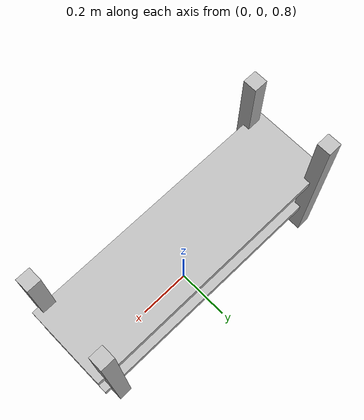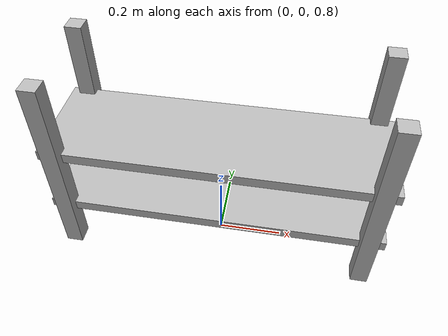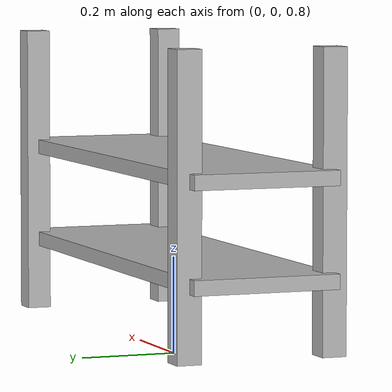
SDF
<?xml version="1.0"?>
<sdf version="1.5">
  <model name="shelf">
    <static>true</static>
    <pose>0 0 0.85 0 0 0</pose>
    <link name="shelf_link">

      <!-- Montanti -->
      <visual name="leg_fl">
        <pose>-0.45 -0.15 0.3 0 0 0</pose>
        <geometry><box><size>0.05 0.05 0.6</size></box></geometry>
      </visual>
      <visual name="leg_fr">
        <pose>0.45 -0.15 0.3 0 0 0</pose>
        <geometry><box><size>0.05 0.05 0.6</size></box></geometry>
      </visual>
      <visual name="leg_bl">
        <pose>-0.45 0.15 0.3 0 0 0</pose>
        <geometry><box><size>0.05 0.05 0.6</size></box></geometry>
      </visual>
      <visual name="leg_br">
        <pose>0.45 0.15 0.3 0 0 0</pose>
        <geometry><box><size>0.05 0.05 0.6</size></box></geometry>
      </visual>

      <!-- Ripiani -->
      <visual name="shelf_1">
        <pose>0 0 0.15 0 0 0</pose>
        <geometry><box><size>1.0 0.3 0.03</size></box></geometry>
      </visual>
      <visual name="shelf_2">
        <pose>0 0 0.35 0 0 0</pose>
        <geometry><box><size>1.0 0.3 0.03</size></box></geometry>
      </visual>

      <!-- Collisione per i singoli ripiani -->
      <collision name="collision_shelf_1">
        <pose>0 0 0.15 0 0 0</pose>
        <geometry><box><size>1.0 0.3 0.03</size></box></geometry>
      </collision>
      <collision name="collision_shelf_2">
        <pose>0 0 0.35 0 0 0</pose>
        <geometry><box><size>1.0 0.3 0.03</size></box></geometry>
      </collision>

    </link>
  </model>
</sdf>
